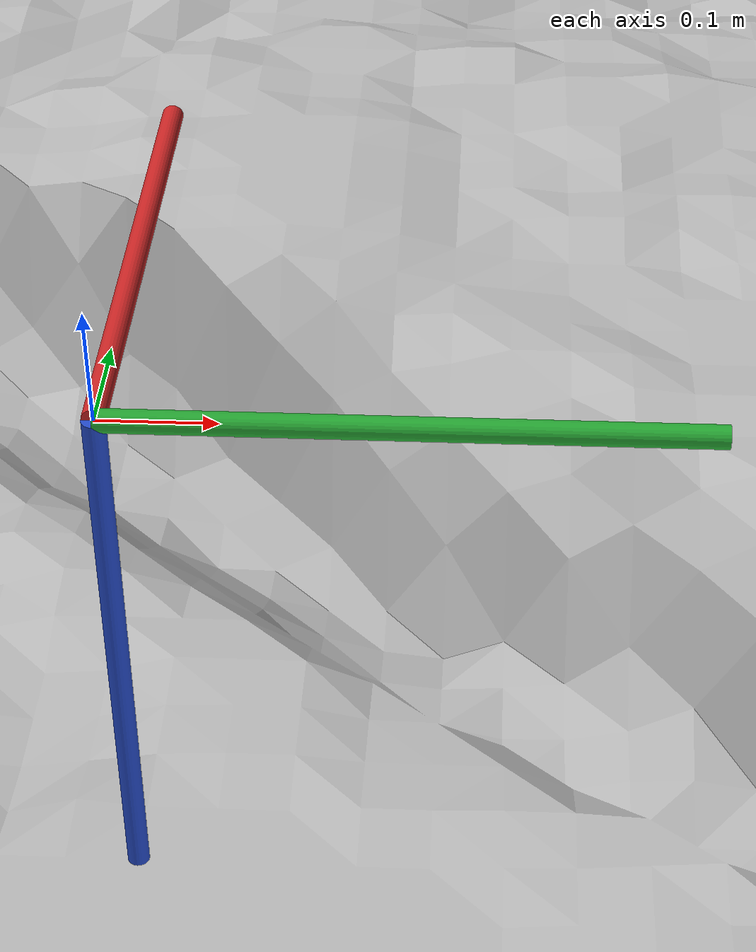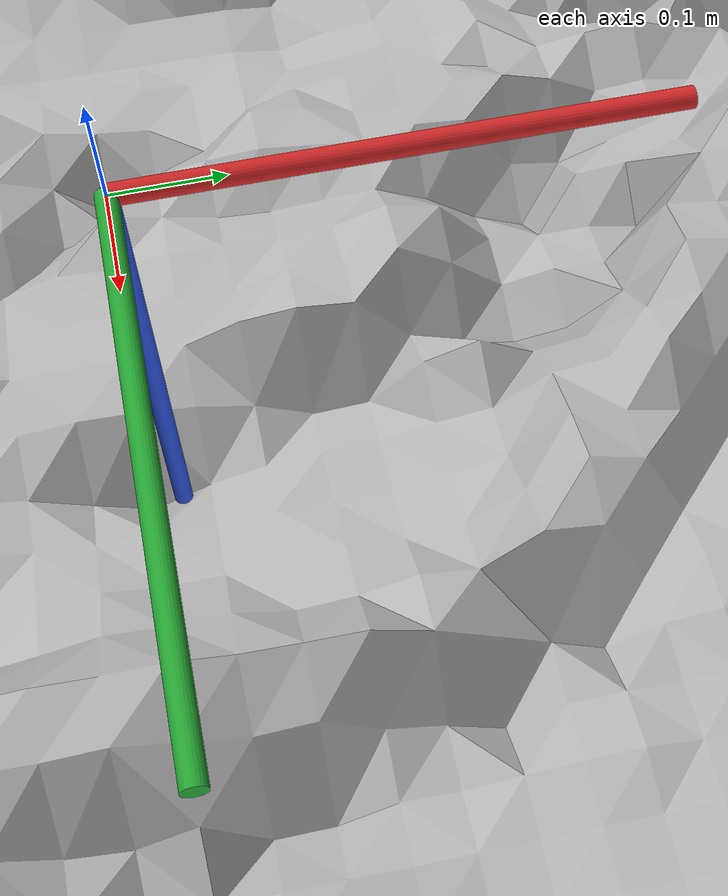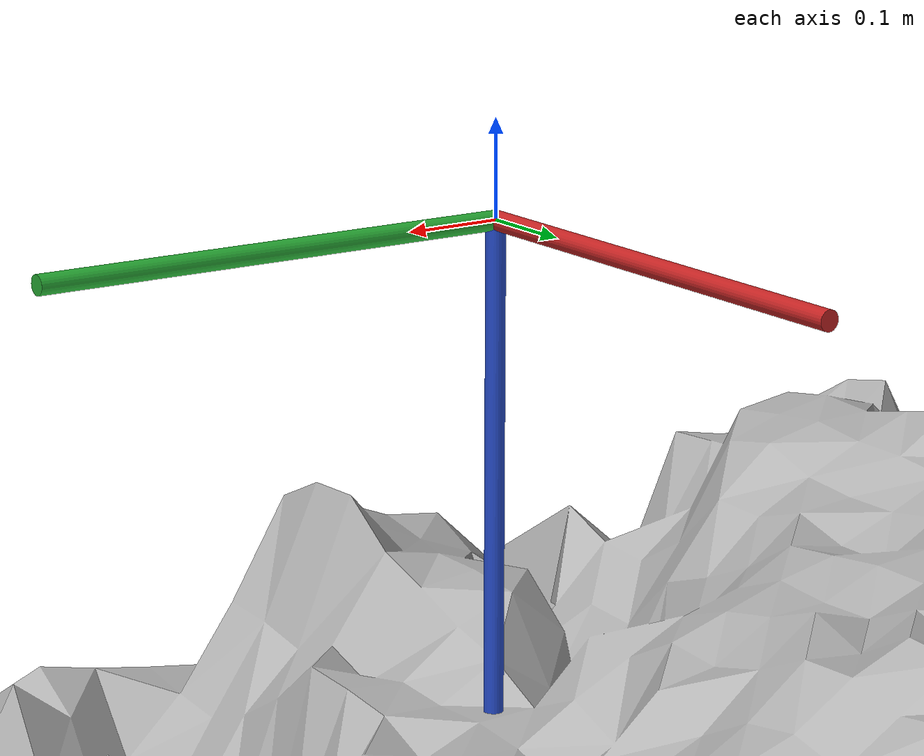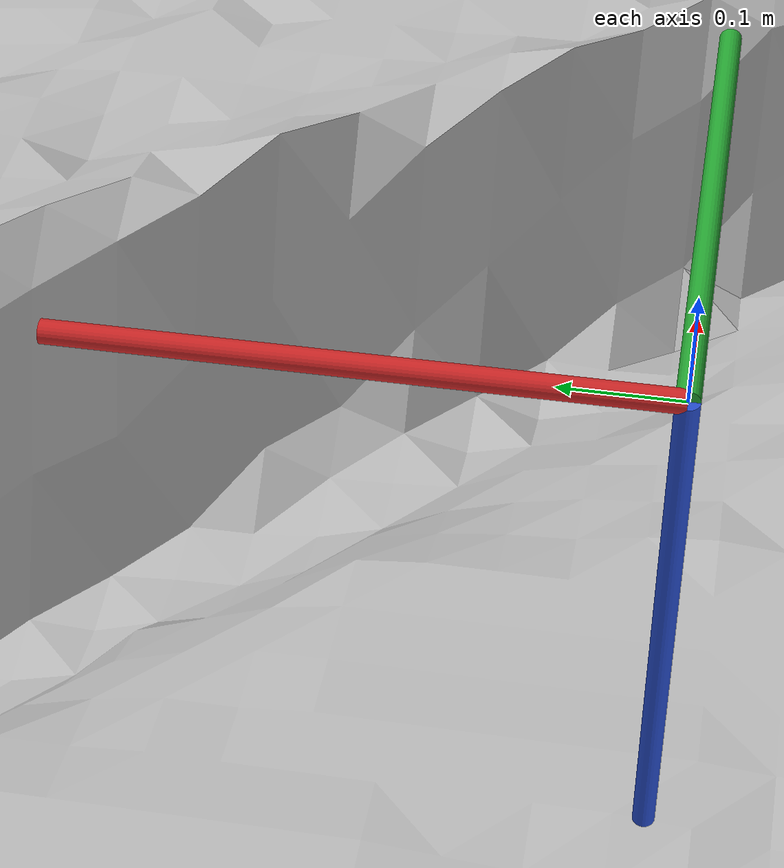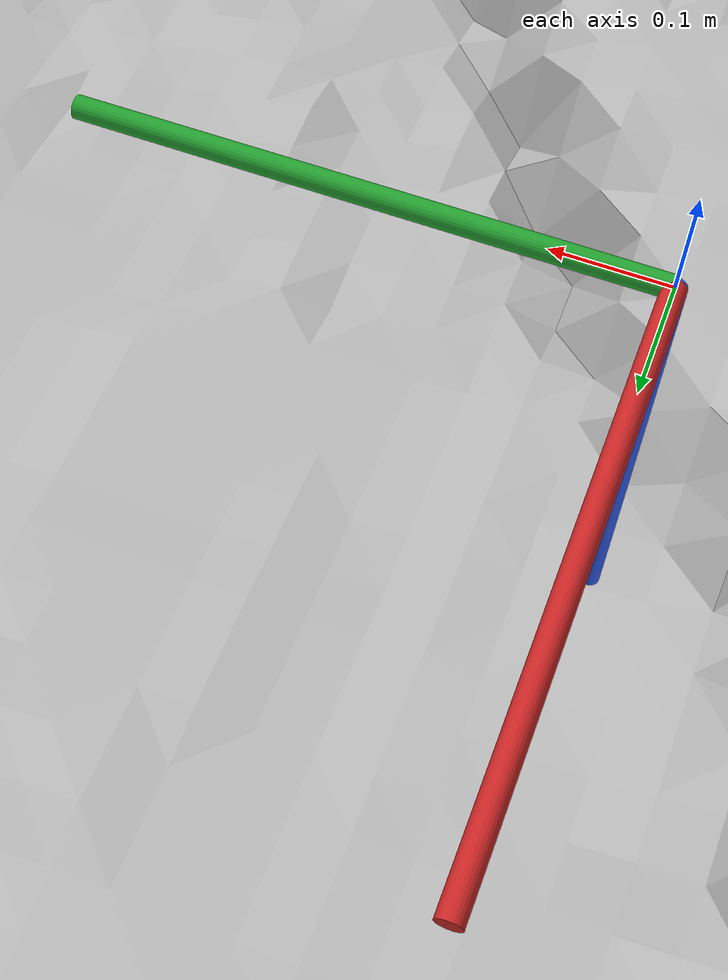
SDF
<sdf version="1.7">
 <world name="oceans_waves">
  <physics name="default_physics" default="1" type="ode">
   <max_step_size>0.002</max_step_size>
   <real_time_factor>1</real_time_factor>
   <real_time_update_rate>500</real_time_update_rate>
  </physics>
  <scene>
   <ambient>0.01 0.01 0.01 1</ambient>
   <sky><clouds><speed>12</speed></clouds></sky>
   <shadows>1</shadows>
   <background>0.7 0.7 0.7 1</background>
  </scene>
  <spherical_coordinates>
   <latitude_deg>56.719</latitude_deg>
   <longitude_deg>3.51562</longitude_deg>
   <surface_model>EARTH_WGS84</surface_model>
   <elevation>0</elevation>
   <heading_deg>0</heading_deg>
  </spherical_coordinates>
  <light name="sun1" type="directional">
   <pose>50 0 150 0 -0 0</pose>
   <diffuse>1 1 1 1</diffuse>
   <specular>0.1 0.1 0.1 1</specular>
   <direction>0.3 0.3 -1</direction>
   <cast_shadows>0</cast_shadows>
   <attenuation><range>10</range></attenuation>
   <spot><inner_angle>0</inner_angle><outer_angle>0</outer_angle><falloff>0</falloff></spot>
  </light>
  <light name="sun_diffuse" type="directional">
   <pose>-50 0 -150 0 -0 0</pose>
   <diffuse>0.6 0.6 0.6 1</diffuse>
   <specular>0 0 0 1</specular>
   <direction>-0.3 -0.3 -1</direction>
   <cast_shadows>0</cast_shadows>
   <attenuation><range>10</range></attenuation>
   <spot><inner_angle>0</inner_angle><outer_angle>0</outer_angle><falloff>0</falloff></spot>
  </light>
  <model name="world_ned">
   <static>1</static>
   <link name="world_ned">
    <gravity>0</gravity>
    <pose>0 0 0 -3.14159 -0 1.5708</pose>
    <visual name="N_visual">
     <pose>0.25 0 0 1.5708 -0 1.5708</pose>
     <geometry><cylinder><radius>0.01</radius><length>0.5</length></cylinder></geometry>
     <material>
      <script><uri>file://media/materials/scripts/gazebo.material</uri><name>Gazebo/Red</name></script>
     </material>
    </visual>
    <visual name="E_visual">
     <pose>0 0.25 0 1.5708 -0 0</pose>
     <geometry><cylinder><radius>0.01</radius><length>0.5</length></cylinder></geometry>
     <material>
      <script><uri>file://media/materials/scripts/gazebo.material</uri><name>Gazebo/Green</name></script>
     </material>
    </visual>
    <visual name="D_visual">
     <pose>0 0 0.25 0 -0 0</pose>
     <geometry><cylinder><radius>0.01</radius><length>0.5</length></cylinder></geometry>
     <material>
      <script><uri>file://media/materials/scripts/gazebo.material</uri><name>Gazebo/Blue</name></script>
     </material>
    </visual>
   </link>
  </model>
  <model name="sand_heightmap">
   <static>1</static>
   <link name="link">
    <collision name="ground">
     <geometry><mesh><uri>model://sand_heightmap/meshes/heightmap.dae</uri></mesh></geometry>
    </collision>
    <visual name="ground_sand">
     <geometry><mesh><uri>model://sand_heightmap/meshes/heightmap.dae</uri></mesh></geometry>
     <material>
      <script>
       <uri>file://media/materials/scripts/sand.material</uri>
       <name>UUVSimulator/SandAndStones</name>
      </script>
      <emissive>0.6 0.6 0.6 1</emissive>
     </material>
    </visual>
   </link>
   <pose>0 0 -95 0 -0 0</pose>
  </model>
  <plugin name="gazebo_ros" filename="libgazebo_ros_state.so"><ros><namespace>/gazebo</namespace></ros></plugin>
  <plugin name="underwater_current_plugin" filename="libuuv_underwater_current_ros_plugin.so">
   <namespace>hydrodynamics</namespace>
   <constant_current>
    <topic>current_velocity</topic>
    <velocity><mean>0</mean><min>0</min><max>5</max><mu>0.0</mu><noiseAmp>0.0</noiseAmp></velocity>
    <horizontal_angle>
     <mean>0</mean>
     <min>-3.141592653589793238</min>
     <max>3.141592653589793238</max>
     <mu>0.0</mu>
     <noiseAmp>0.0</noiseAmp>
    </horizontal_angle>
    <vertical_angle>
     <mean>0</mean>
     <min>-3.141592653589793238</min>
     <max>3.141592653589793238</max>
     <mu>0.0</mu>
     <noiseAmp>0.0</noiseAmp>
    </vertical_angle>
   </constant_current>
  </plugin>
  <plugin name="sc_interface" filename="libuuv_sc_ros_interface_plugin.so"/>
  <gravity>0 0 -9.8</gravity>
  <magnetic_field>6e-06 2.3e-05 -4.2e-05</magnetic_field>
  <atmosphere type="adiabatic"/>
  <audio><device>default</device></audio>
 </world>
</sdf>
